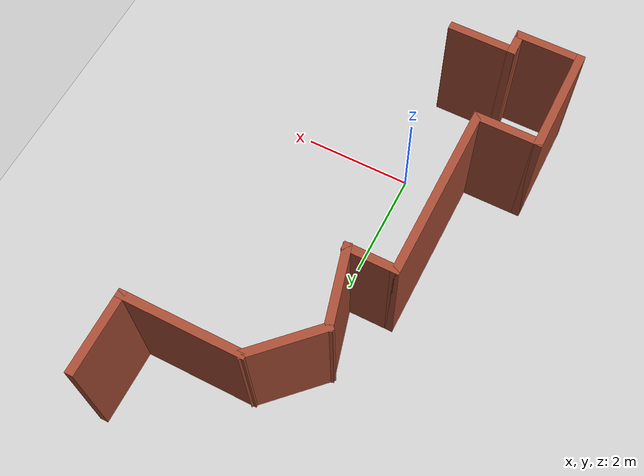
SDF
<sdf version="1.7">
 <world name="default">
  <light name="sun" type="directional">
   <pose>0 0 10 0 -0 0</pose>
   <diffuse>0.8 0.8 0.8 1</diffuse>
   <specular>0.2 0.2 0.2 1</specular>
   <attenuation>
    <range>1000</range>
    <constant>0.9</constant>
    <linear>0.01</linear>
    <quadratic>0.001</quadratic>
   </attenuation>
   <direction>-0.5 0.1 -0.9</direction>
   <spot><inner_angle>0</inner_angle><outer_angle>0</outer_angle><falloff>0</falloff></spot>
  </light>
  <model name="ground_plane">
   <static>1</static>
   <link name="link">
    <collision name="collision">
     <geometry><plane><normal>0 0 1</normal><size>100 100</size></plane></geometry>
     <surface>
      <contact><collide_bitmask>65535</collide_bitmask></contact>
      <friction><ode><mu>100</mu><mu2>50</mu2></ode></friction>
     </surface>
    </collision>
    <visual name="visual">
     <cast_shadows>0</cast_shadows>
     <geometry><plane><normal>0 0 1</normal><size>100 100</size></plane></geometry>
     <material>
      <script><uri>file://media/materials/scripts/gazebo.material</uri><name>Gazebo/Grey</name></script>
     </material>
    </visual>
   </link>
  </model>
  <gravity>0 0 -9.8</gravity>
  <magnetic_field>6e-06 2.3e-05 -4.2e-05</magnetic_field>
  <atmosphere type="adiabatic"/>
  <physics type="ode">
   <max_step_size>0.001</max_step_size>
   <real_time_factor>1</real_time_factor>
   <real_time_update_rate>1000</real_time_update_rate>
  </physics>
  <scene><ambient>0.4 0.4 0.4 1</ambient><background>0.7 0.7 0.7 1</background><shadows>1</shadows></scene>
  <spherical_coordinates>
   <surface_model>EARTH_WGS84</surface_model>
   <latitude_deg>0</latitude_deg>
   <longitude_deg>0</longitude_deg>
   <elevation>0</elevation>
   <heading_deg>0</heading_deg>
  </spherical_coordinates>
  <model name="test_world">
   <pose>0.247594 2.0393 0 0 -0 0</pose>
   <link name="Wall_0">
    <collision name="Wall_0_Collision">
     <geometry><box><size>2 0.15 2.5</size></box></geometry>
     <pose>0 0 1.25 0 -0 0</pose>
    </collision>
    <visual name="Wall_0_Visual">
     <pose>0 0 1.25 0 -0 0</pose>
     <geometry><box><size>2 0.15 2.5</size></box></geometry>
     <material>
      <script><uri>file://media/materials/scripts/gazebo.material</uri><name>Gazebo/Bricks</name></script>
      <ambient>1 1 1 1</ambient>
     </material>
     <meta><layer>0</layer></meta>
    </visual>
    <pose>-2.32759 -3.3543 0 0 -0 1.5708</pose>
   </link>
   <link name="Wall_1">
    <collision name="Wall_1_Collision">
     <geometry><box><size>1.25 0.15 2.5</size></box></geometry>
     <pose>0 0 1.25 0 -0 0</pose>
    </collision>
    <visual name="Wall_1_Visual">
     <pose>0 0 1.25 0 -0 0</pose>
     <geometry><box><size>1.25 0.15 2.5</size></box></geometry>
     <material>
      <script><uri>file://media/materials/scripts/gazebo.material</uri><name>Gazebo/Bricks</name></script>
      <ambient>1 1 1 1</ambient>
     </material>
     <meta><layer>0</layer></meta>
    </visual>
    <pose>-1.77759 -2.4293 0 0 -0 0</pose>
   </link>
   <link name="Wall_10">
    <collision name="Wall_10_Collision">
     <geometry><box><size>0.5 0.15 2.5</size></box></geometry>
     <pose>0 0 1.25 0 -0 0</pose>
    </collision>
    <visual name="Wall_10_Visual">
     <pose>0 0 1.25 0 -0 0</pose>
     <geometry><box><size>0.5 0.15 2.5</size></box></geometry>
     <material>
      <script><uri>file://media/materials/scripts/gazebo.material</uri><name>Gazebo/Bricks</name></script>
      <ambient>1 1 1 1</ambient>
     </material>
     <meta><layer>0</layer></meta>
    </visual>
    <pose>-1.22759 -4.1043 0 0 -0 1.5708</pose>
   </link>
   <link name="Wall_11">
    <collision name="Wall_11_Collision">
     <geometry><box><size>1.25 0.15 2.5</size></box></geometry>
     <pose>0 0 1.25 0 -0 0</pose>
    </collision>
    <visual name="Wall_11_Visual">
     <pose>0 0 1.25 0 -0 0</pose>
     <geometry><box><size>1.25 0.15 2.5</size></box></geometry>
     <material>
      <script><uri>file://media/materials/scripts/gazebo.material</uri><name>Gazebo/Bricks</name></script>
      <ambient>1 1 1 1</ambient>
     </material>
     <meta><layer>0</layer></meta>
    </visual>
    <pose>-0.677594 -3.9293 0 0 -0 0</pose>
   </link>
   <link name="Wall_2">
    <collision name="Wall_2_Collision">
     <geometry><box><size>3.25 0.15 2.5</size></box></geometry>
     <pose>0 0 1.25 0 -0 0</pose>
    </collision>
    <visual name="Wall_2_Visual">
     <pose>0 0 1.25 0 -0 0</pose>
     <geometry><box><size>3.25 0.15 2.5</size></box></geometry>
     <material>
      <script><uri>file://media/materials/scripts/gazebo.material</uri><name>Gazebo/Bricks</name></script>
      <ambient>1 1 1 1</ambient>
     </material>
     <meta><layer>0</layer></meta>
    </visual>
    <pose>-1.22759 -0.879297 0 0 -0 1.5708</pose>
   </link>
   <link name="Wall_3">
    <collision name="Wall_3_Collision">
     <geometry><box><size>1 0.15 2.5</size></box></geometry>
     <pose>0 0 1.25 0 -0 0</pose>
    </collision>
    <visual name="Wall_3_Visual">
     <pose>0 0 1.25 0 -0 0</pose>
     <geometry><box><size>1 0.15 2.5</size></box></geometry>
     <material>
      <script><uri>file://media/materials/scripts/gazebo.material</uri><name>Gazebo/Bricks</name></script>
      <ambient>1 1 1 1</ambient>
     </material>
     <meta><layer>0</layer></meta>
    </visual>
    <pose>-0.802594 0.670703 0 0 -0 0</pose>
   </link>
   <link name="Wall_4">
    <collision name="Wall_4_Collision">
     <geometry><box><size>1.5 0.15 2.5</size></box></geometry>
     <pose>0 0 1.25 0 -0 0</pose>
    </collision>
    <visual name="Wall_4_Visual">
     <pose>0 0 1.25 0 -0 0</pose>
     <geometry><box><size>1.5 0.15 2.5</size></box></geometry>
     <material>
      <script><uri>file://media/materials/scripts/gazebo.material</uri><name>Gazebo/Bricks</name></script>
      <ambient>1 1 1 1</ambient>
     </material>
     <meta><layer>0</layer></meta>
    </visual>
    <pose>-0.552297 1.3227 0 0 -0 1.8326</pose>
   </link>
   <link name="Wall_5">
    <collision name="Wall_5_Collision">
     <geometry><box><size>1.5 0.15 2.5</size></box></geometry>
     <pose>0 0 1.25 0 -0 0</pose>
    </collision>
    <visual name="Wall_5_Visual">
     <pose>0 0 1.25 0 -0 0</pose>
     <geometry><box><size>1.5 0.15 2.5</size></box></geometry>
     <material>
      <script><uri>file://media/materials/scripts/gazebo.material</uri><name>Gazebo/Bricks</name></script>
      <ambient>1 1 1 1</ambient>
     </material>
     <meta><layer>0</layer></meta>
    </visual>
    <pose>-0.249703 2.452 0 0 -0 0.785398</pose>
   </link>
   <link name="Wall_6">
    <collision name="Wall_6_Collision">
     <geometry><box><size>2.25 0.15 2.5</size></box></geometry>
     <pose>0 0 1.25 0 -0 0</pose>
    </collision>
    <visual name="Wall_6_Visual">
     <pose>0 0 1.25 0 -0 0</pose>
     <geometry><box><size>2.25 0.15 2.5</size></box></geometry>
     <material>
      <script><uri>file://media/materials/scripts/gazebo.material</uri><name>Gazebo/Bricks</name></script>
      <ambient>1 1 1 1</ambient>
     </material>
     <meta><layer>0</layer></meta>
    </visual>
    <pose>1.27759 2.9293 0 0 -0 0</pose>
   </link>
   <link name="Wall_7">
    <collision name="Wall_7_Collision">
     <geometry><box><size>1.5 0.15 2.5</size></box></geometry>
     <pose>0 0 1.25 0 -0 0</pose>
    </collision>
    <visual name="Wall_7_Visual">
     <pose>0 0 1.25 0 -0 0</pose>
     <geometry><box><size>1.5 0.15 2.5</size></box></geometry>
     <material>
      <script><uri>file://media/materials/scripts/gazebo.material</uri><name>Gazebo/Bricks</name></script>
      <ambient>1 1 1 1</ambient>
     </material>
     <meta><layer>0</layer></meta>
    </visual>
    <pose>2.32759 3.6043 0 0 -0 1.5708</pose>
   </link>
   <link name="Wall_9">
    <collision name="Wall_9_Collision">
     <geometry><box><size>1.25 0.15 2.5</size></box></geometry>
     <pose>0 0 1.25 0 -0 0</pose>
    </collision>
    <visual name="Wall_9_Visual">
     <pose>0 0 1.25 0 -0 0</pose>
     <geometry><box><size>1.25 0.15 2.5</size></box></geometry>
     <material>
      <script><uri>file://media/materials/scripts/gazebo.material</uri><name>Gazebo/Bricks</name></script>
      <ambient>1 1 1 1</ambient>
     </material>
     <meta><layer>0</layer></meta>
    </visual>
    <pose>-1.77759 -4.2793 0 0 -0 0</pose>
   </link>
   <static>1</static>
  </model>
 </world>
</sdf>
